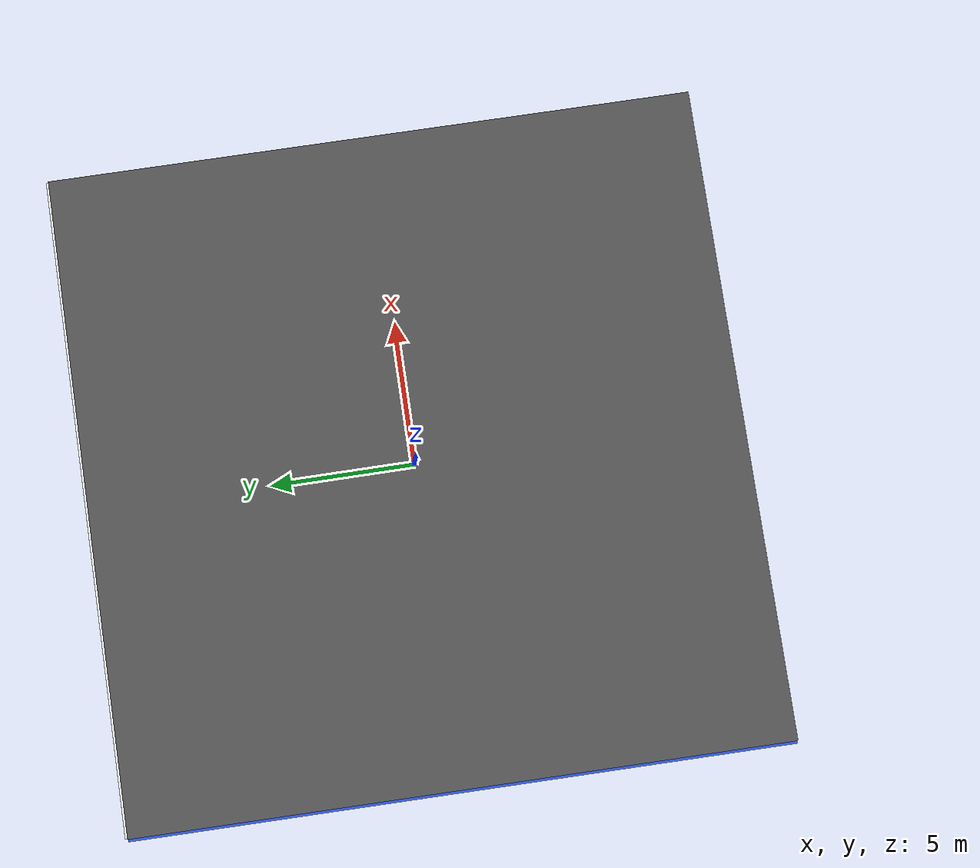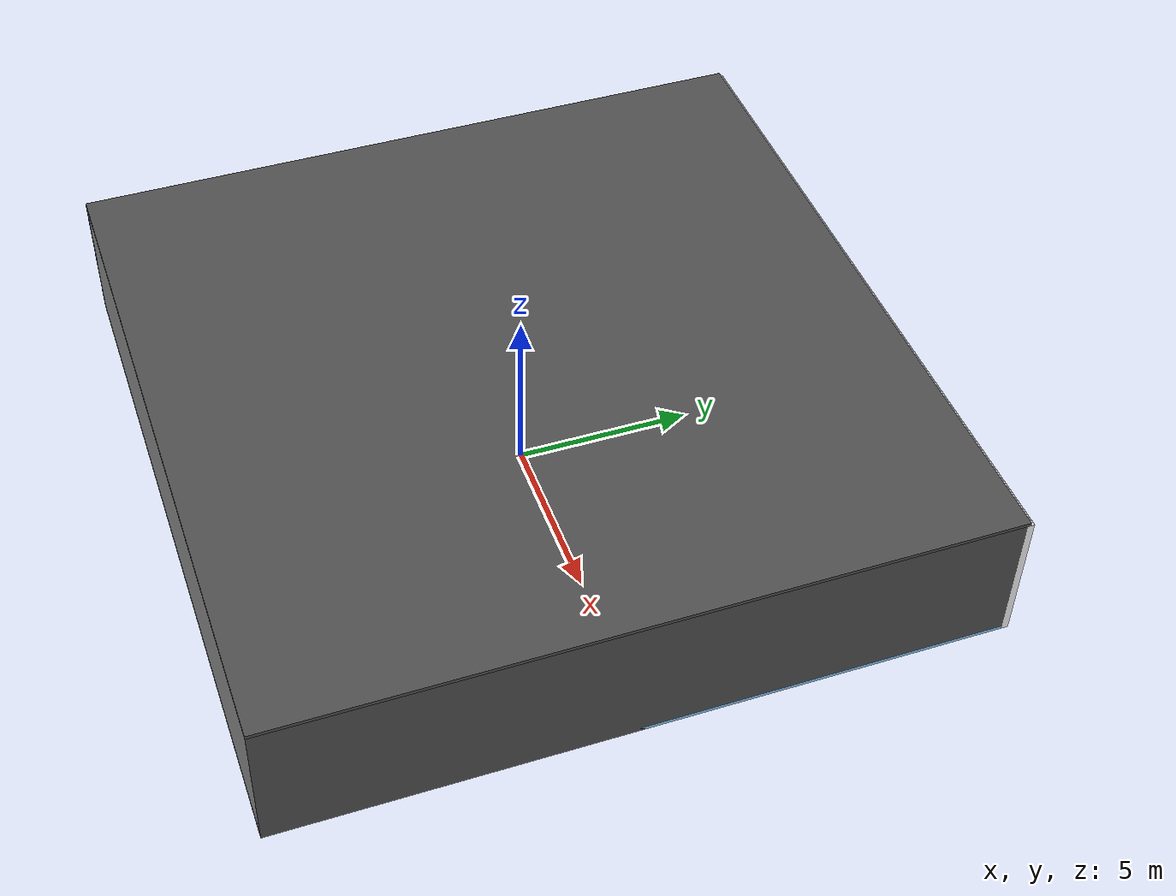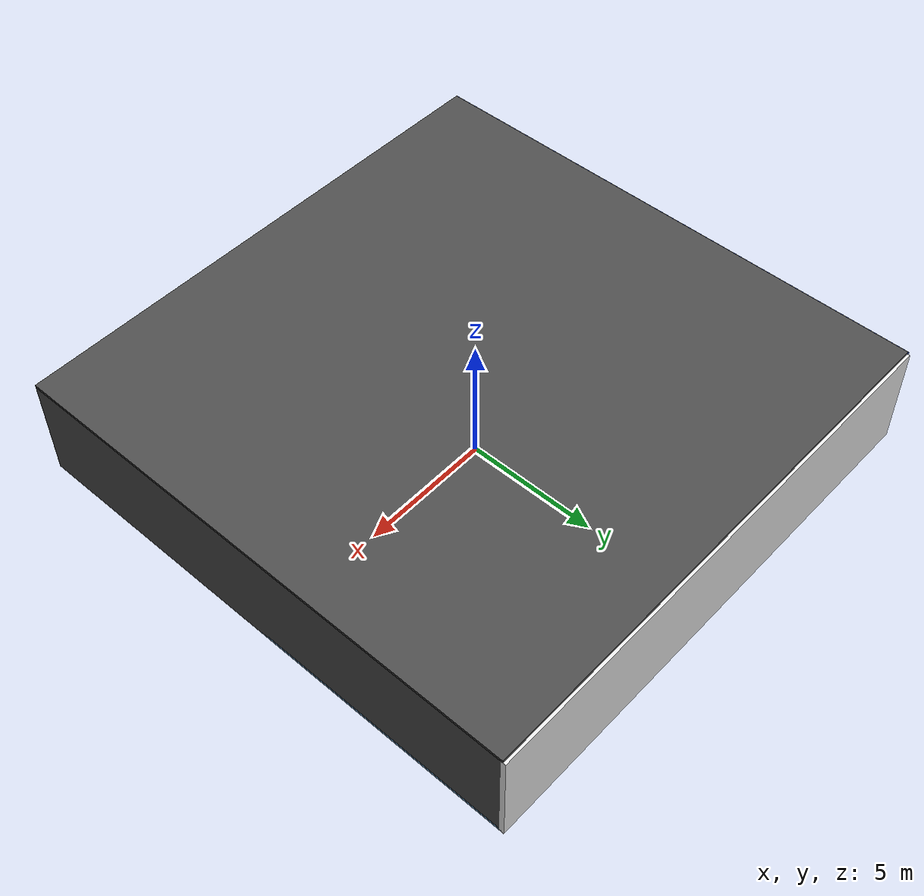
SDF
<sdf version="1.4">
 <world name="default">
  <physics type="ode">
   <max_step_size>0.001</max_step_size>
   <real_time_factor>1</real_time_factor>
   <real_time_update_rate>1000</real_time_update_rate>
   <gravity>0 0 -9.8</gravity>
  </physics>
  <scene><ambient>0.4 0.4 0.4 1</ambient><background>0.7 0.7 0.7 1</background><shadows>1</shadows></scene>
  <model name="Surrounding">
   <static>1</static>
   <link name="Ceiling">
    <collision name="Ceiling_Collision"><geometry><box><size>20 20 0.1</size></box></geometry></collision>
    <visual name="Ceiling_Visual">
     <geometry><box><size>20 20 0.1</size></box></geometry>
     <material>
      <script><uri>file://media/materials/scripts/gazebo.material</uri><name>Gazebo/DarkGrey</name></script>
     </material>
    </visual>
    <pose>0 0 4.05 0 0 0</pose>
   </link>
   <link name="Wall_South">
    <collision name="Wall_South_Collision">
     <geometry><box><size>20 0 4</size></box></geometry>
     <pose>0 0 2 0 -0 0</pose>
    </collision>
    <visual name="Wall_South_Visual">
     <pose>0 0 2 0 -0 0</pose>
     <geometry><box><size>20 0 4</size></box></geometry>
     <material>
      <script><uri>file://media/materials/scripts/gazebo.material</uri><name>Gazebo/PioneerBody</name></script>
     </material>
    </visual>
    <velocity_decay><linear>0</linear><angular>0</angular></velocity_decay>
    <pose>0 -10 0 0 -0 0</pose>
   </link>
   <link name="Wall_East">
    <collision name="Wall_21_Collision">
     <geometry><box><size>20 0 4</size></box></geometry>
     <pose>0 0 2 0 -0 0</pose>
    </collision>
    <visual name="Wall_21_Visual">
     <pose>0 0 2 0 -0 0</pose>
     <geometry><box><size>20 0 4</size></box></geometry>
     <material>
      <script><uri>file://media/materials/scripts/gazebo.material</uri><name>Gazebo/DarkGrey</name></script>
     </material>
    </visual>
    <velocity_decay><linear>0</linear><angular>0</angular></velocity_decay>
    <pose>10 0 0 0 -0 1.5708</pose>
   </link>
   <link name="Wall_North">
    <collision name="Wall_22_Collision">
     <geometry><box><size>20 0.2 4</size></box></geometry>
     <pose>0 0 2 0 -0 0</pose>
    </collision>
    <visual name="Wall_22_Visual">
     <pose>0 0 2 0 -0 0</pose>
     <geometry><box><size>20 0.2 4</size></box></geometry>
     <material>
      <script><uri>file://media/materials/scripts/gazebo.material</uri><name>Gazebo/WhiteGlow</name></script>
     </material>
    </visual>
    <velocity_decay><linear>0</linear><angular>0</angular></velocity_decay>
    <pose>0 10 0 0 -0 0</pose>
   </link>
   <link name="Wall_West">
    <collision name="Wall_23_Collision">
     <geometry><box><size>20 0.2 4</size></box></geometry>
     <pose>0 0 2 0 -0 0</pose>
    </collision>
    <visual name="Wall_23_Visual">
     <pose>0 0 2 0 -0 0</pose>
     <geometry><box><size>20 0.2 4</size></box></geometry>
     <material>
      <script><uri>file://media/materials/scripts/gazebo.material</uri><name>Gazebo/Blue</name></script>
     </material>
    </visual>
    <velocity_decay><linear>0</linear><angular>0</angular></velocity_decay>
    <pose>-10 0 0 0 0 -1.5708</pose>
   </link>
   <link name="Ground_link">
    <collision name="collision">
     <pose>0 0 .05 0 -0 0</pose>
     <geometry><box><size>20 20 0.1</size></box></geometry>
    </collision>
    <visual name="visual">
     <pose>0 0 .05 0 -0 0</pose>
     <geometry><box><size>20 20 0.1</size></box></geometry>
     <material>
      <script><uri>file://media/materials/scripts/gazebo.material</uri><name>Gazebo/SkyBlue</name></script>
     </material>
    </visual>
   </link>
   <static>1</static>
  </model>
  <spherical_coordinates>
   <surface_model>EARTH_WGS84</surface_model>
   <latitude_deg>0</latitude_deg>
   <longitude_deg>0</longitude_deg>
   <elevation>0</elevation>
   <heading_deg>0</heading_deg>
  </spherical_coordinates>
  <light name="lightball_0" type="diffuse">
   <diffuse>0.8 0.8 0.8 1</diffuse>
   <specular>0.2 0.2 0.2 1</specular>
   <attenuation>
    <range>100</range>
    <constant>0.7</constant>
    <linear>0.01</linear>
    <quadratic>0.001</quadratic>
   </attenuation>
   <direction>-0.5 0.1 -0.9</direction>
   <pose>6.28063218048 -3.68997960361 0.923994375485 0 0 0</pose>
  </light>
  <light name="lightball_1" type="diffuse">
   <diffuse>0.8 0.8 0.8 1</diffuse>
   <specular>0.2 0.2 0.2 1</specular>
   <attenuation>
    <range>100</range>
    <constant>0.7</constant>
    <linear>0.01</linear>
    <quadratic>0.001</quadratic>
   </attenuation>
   <direction>-0.5 0.1 -0.9</direction>
   <pose>6.86976914289 3.60192543262 0.760691728205 0 0 0</pose>
  </light>
  <light name="lightball_2" type="diffuse">
   <diffuse>0.8 0.8 0.8 1</diffuse>
   <specular>0.2 0.2 0.2 1</specular>
   <attenuation>
    <range>100</range>
    <constant>0.7</constant>
    <linear>0.01</linear>
    <quadratic>0.001</quadratic>
   </attenuation>
   <direction>-0.5 0.1 -0.9</direction>
   <pose>0.838332430161 -5.43280040818 3.00062198686 0 0 0</pose>
  </light>
  <light name="lightball_3" type="diffuse">
   <diffuse>0.8 0.8 0.8 1</diffuse>
   <specular>0.2 0.2 0.2 1</specular>
   <attenuation>
    <range>100</range>
    <constant>0.7</constant>
    <linear>0.01</linear>
    <quadratic>0.001</quadratic>
   </attenuation>
   <direction>-0.5 0.1 -0.9</direction>
   <pose>-9.47787377735 6.47450515252 0.512945398169 0 0 0</pose>
  </light>
  <light name="lightball_4" type="diffuse">
   <diffuse>0.8 0.8 0.8 1</diffuse>
   <specular>0.2 0.2 0.2 1</specular>
   <attenuation>
    <range>100</range>
    <constant>0.7</constant>
    <linear>0.01</linear>
    <quadratic>0.001</quadratic>
   </attenuation>
   <direction>-0.5 0.1 -0.9</direction>
   <pose>-2.73941620032 9.30417406548 3.25998557861 0 0 0</pose>
  </light>
  <light name="lightball_5" type="diffuse">
   <diffuse>0.8 0.8 0.8 1</diffuse>
   <specular>0.2 0.2 0.2 1</specular>
   <attenuation>
    <range>100</range>
    <constant>0.7</constant>
    <linear>0.01</linear>
    <quadratic>0.001</quadratic>
   </attenuation>
   <direction>-0.5 0.1 -0.9</direction>
   <pose>-4.98706739976 -2.04541777123 2.48762280923 0 0 0</pose>
  </light>
  <include><uri>model://table</uri><pose>-8.23963642591 -4.38140231649 0 0 0 1.93981870445</pose></include>
  <include>
   <uri>model://textured_shapes</uri>
   <pose>2.15796674683 -1.14759405363 0 0 0 2.11489389782</pose>
  </include>
  <include>
   <uri>model://robocup_3Dsim_goal</uri>
   <pose>2.47073524814 6.75748913498 0 0 0 0.738299434507</pose>
  </include>
  <include>
   <uri>model://construction_cone</uri>
   <pose>4.26968367372 8.2869866671 0 0 0 2.18262625755</pose>
  </include>
 </world>
</sdf>

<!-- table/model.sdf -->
<sdf version="1.5">
  <model name="table">
    <static>true</static>
    <link name="link">
      <collision name="surface">
        <pose>0 0 1.0 0 0 0</pose>
        <geometry>
          <box>
            <size>1.5 0.8 0.03</size>
          </box>
        </geometry>
        <surface>
          <friction>
            <ode>
              <mu>0.6</mu>
              <mu2>0.6</mu2>
            </ode>
          </friction>
        </surface>
      </collision>
      <visual name="visual1">
        <pose>0 0 1.0 0 0 0</pose>
        <geometry>
          <box>
            <size>1.5 0.8 0.03</size>
          </box>
        </geometry>
        <material>
          <script>
            <uri>model://media/materials/scripts/gazebo.material</uri>
            <name>Gazebo/Wood</name>
          </script>
        </material>
      </visual>
      <collision name="front_left_leg">
        <pose>0.68 0.38 0.5 0 0 0</pose>
        <geometry>
          <cylinder>
            <radius>0.02</radius>
            <length>1.0</length>
          </cylinder>
        </geometry>
      </collision>
      <visual name="front_left_leg">
        <pose>0.68 0.38 0.5 0 0 0</pose>
        <geometry>
          <cylinder>
            <radius>0.02</radius>
            <length>1.0</length>
          </cylinder>
        </geometry>
        <material>
          <script>
            <uri>model://media/materials/scripts/gazebo.material</uri>
            <name>Gazebo/Grey</name>
          </script>
        </material>
      </visual>
      <collision name="front_right_leg">
        <pose>0.68 -0.38 0.5 0 0 0</pose>
        <geometry>
          <cylinder>
            <radius>0.02</radius>
            <length>1.0</length>
          </cylinder>
        </geometry>
      </collision>
      <visual name="front_right_leg">
        <pose>0.68 -0.38 0.5 0 0 0</pose>
        <geometry>
          <cylinder>
            <radius>0.02</radius>
            <length>1.0</length>
          </cylinder>
        </geometry>
        <material>
          <script>
            <uri>model://media/materials/scripts/gazebo.material</uri>
            <name>Gazebo/Grey</name>
          </script>
        </material>
      </visual>
      <collision name="back_right_leg">
        <pose>-0.68 -0.38 0.5 0 0 0</pose>
        <geometry>
          <cylinder>
            <radius>0.02</radius>
            <length>1.0</length>
          </cylinder>
        </geometry>
      </collision>
      <visual name="back_right_leg">
        <pose>-0.68 -0.38 0.5 0 0 0</pose>
        <geometry>
          <cylinder>
            <radius>0.02</radius>
            <length>1.0</length>
          </cylinder>
        </geometry>
        <material>
          <script>
            <uri>model://media/materials/scripts/gazebo.material</uri>
            <name>Gazebo/Grey</name>
          </script>
        </material>
      </visual>
      <collision name="back_left_leg">
        <pose>-0.68 0.38 0.5 0 0 0</pose>
        <geometry>
          <cylinder>
            <radius>0.02</radius>
            <length>1.0</length>
          </cylinder>
        </geometry>
      </collision>
      <visual name="back_left_leg">
        <pose>-0.68 0.38 0.5 0 0 0</pose>
        <geometry>
          <cylinder>
            <radius>0.02</radius>
            <length>1.0</length>
          </cylinder>
        </geometry>
        <material>
          <script>
            <uri>model://media/materials/scripts/gazebo.material</uri>
            <name>Gazebo/Grey</name>
          </script>
        </material>
      </visual>
    </link>
  </model>
</sdf>

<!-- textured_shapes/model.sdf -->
<sdf version="1.6">
  <model name="textured_shapes">
    <pose>0 0 0.5 0 0 0</pose>
    <link name="box">
      <pose>0 -1.5 0 0 0 0</pose>
      <collision name="collision">
        <geometry>
          <box>
            <size>1 1 1</size>
          </box>
        </geometry>
      </collision>
      <visual name="visual">
        <geometry>
          <box>
            <size>1 1 1</size>
          </box>
        </geometry>
        <material>
          <script>
            <uri>model://../model_source/models/textured_shapes/materials/scripts</uri>
            <uri>model://../model_source/models/textured_shapes/materials/textures</uri>
            <name>TexturedShape/Squares</name>
          </script>
        </material>
      </visual>
    </link>
    <link name="sphere">
      <collision name="collision">
        <geometry>
          <sphere>
            <radius>0.5</radius>
          </sphere>
        </geometry>
      </collision>
      <visual name="visual">
        <geometry>
          <sphere>
            <radius>0.5</radius>
          </sphere>
        </geometry>
        <material>
          <script>
            <uri>model://../model_source/models/textured_shapes/materials/scripts</uri>
            <uri>model://../model_source/models/textured_shapes/materials/textures</uri>
            <name>TexturedShape/Squares</name>
          </script>
        </material>
      </visual>
    </link>
    <link name="cylinder">
      <pose>0 1.5 0 0 0 0</pose>
      <collision name="collision">
        <geometry>
          <cylinder>
            <radius>0.5</radius>
            <length>1</length>
          </cylinder>
        </geometry>
      </collision>
      <visual name="visual">
        <geometry>
          <cylinder>
            <radius>0.5</radius>
            <length>1</length>
          </cylinder>
        </geometry>
        <material>
          <script>
            <uri>model://../model_source/models/textured_shapes/materials/scripts</uri>
            <uri>model://../model_source/models/textured_shapes/materials/textures</uri>
            <name>TexturedShape/Squares</name>
          </script>
        </material>
      </visual>
    </link>
  </model>
</sdf>

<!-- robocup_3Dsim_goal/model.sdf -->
<sdf version="1.5">
  <model name="robocup_3d_goal">
    <static>true</static>
    <link name="left_post">
      <pose>0 1.05 0.45 0 0 0</pose>
      <collision name="collision">
        <geometry>
          <cylinder>
            <radius>0.05</radius>
            <length>0.9</length>
          </cylinder>
        </geometry>
      </collision>
      <visual name="visual">
        <geometry>
          <cylinder>
            <radius>0.05</radius>
            <length>0.9</length>
          </cylinder>
        </geometry>
        <material>
          <script>
            <uri>file://media/materials/scripts/gazebo.material</uri>
            <name>Gazebo/ZincYellow</name>
          </script>
        </material>
      </visual>
    </link>
    <link name="left_support_horiz_lower">
      <pose>0.30 1.05 0.01 0 0 0</pose>
      <collision name="collision">
        <geometry>
          <box>
            <size>0.50 0.02 0.02</size>
          </box>
        </geometry>
      </collision>
      <visual name="visual">
        <geometry>
          <box>
            <size>0.50 0.02 0.02</size>
          </box>
        </geometry>
        <material>
          <script>
            <uri>file://media/materials/scripts/gazebo.material</uri>
            <name>Gazebo/White</name>
          </script>
        </material>
      </visual>
    </link>
    <link name="left_support_horiz_upper">
      <pose>0.30 1.05 0.79 0 0 0</pose>
      <collision name="collision">
        <geometry>
          <box>
            <size>0.50 0.02 0.02</size>
          </box>
        </geometry>
      </collision>
      <visual name="visual">
        <geometry>
          <box>
            <size>0.50 0.02 0.02</size>
          </box>
        </geometry>
        <material>
          <script>
            <uri>file://media/materials/scripts/gazebo.material</uri>
            <name>Gazebo/White</name>
          </script>
        </material>
      </visual>
    </link>
    <link name="left_support_vertical">
      <pose>0.56 1.05 0.4 0 1.5708 0</pose>
      <collision name="collision">
        <geometry>
          <box>
            <size>0.80 0.02 0.02</size>
          </box>
        </geometry>
      </collision>
      <visual name="visual">
        <geometry>
          <box>
            <size>0.80 0.02 0.02</size>
          </box>
        </geometry>
        <material>
          <script>
            <uri>file://media/materials/scripts/gazebo.material</uri>
            <name>Gazebo/White</name>
          </script>
        </material>
      </visual>
    </link>
    <link name="right_support_horiz_lower">
      <pose>0.30 -1.05 0.01 0 0 0</pose>
      <collision name="collision">
        <geometry>
          <box>
            <size>0.50 0.02 0.02</size>
          </box>
        </geometry>
      </collision>
      <visual name="visual">
        <geometry>
          <box>
            <size>0.50 0.02 0.02</size>
          </box>
        </geometry>
        <material>
          <script>
            <uri>file://media/materials/scripts/gazebo.material</uri>
            <name>Gazebo/White</name>
          </script>
        </material>
      </visual>
    </link>
    <link name="right_support_horiz_upper">
      <pose>0.30 -1.05 0.79 0 0 0</pose>
      <collision name="collision">
        <geometry>
          <box>
            <size>0.50 0.02 0.02</size>
          </box>
        </geometry>
      </collision>
      <visual name="visual">
        <geometry>
          <box>
            <size>0.50 0.02 0.02</size>
          </box>
        </geometry>
        <material>
          <script>
            <uri>file://media/materials/scripts/gazebo.material</uri>
            <name>Gazebo/White</name>
          </script>
        </material>
      </visual>
    </link>
    <link name="right_support_vertical">
      <pose>0.56 -1.05 0.4 0 1.5708 0</pose>
      <collision name="collision">
        <geometry>
          <box>
            <size>0.80 0.02 0.02</size>
          </box>
        </geometry>
      </collision>
      <visual name="visual">
        <geometry>
          <box>
            <size>0.80 0.02 0.02</size>
          </box>
        </geometry>
        <material>
          <script>
            <uri>file://media/materials/scripts/gazebo.material</uri>
            <name>Gazebo/White</name>
          </script>
        </material>
      </visual>
    </link>
    <link name="center_support_horiz_lower">
      <pose>0.56 0 0.01 0 1.5708 0</pose>
      <collision name="collision">
        <geometry>
          <box>
            <size>0.02 2.08 0.02</size>
          </box>
        </geometry>
      </collision>
      <visual name="visual">
        <geometry>
          <box>
            <size>0.02 2.08 0.02</size>
          </box>
        </geometry>
        <material>
          <script>
            <uri>file://media/materials/scripts/gazebo.material</uri>
            <name>Gazebo/White</name>
          </script>
        </material>
      </visual>
    </link>
    <link name="center_support_horiz_upper">
      <pose>0.56 0 0.79 0 1.5708 0</pose>
      <collision name="collision">
        <geometry>
          <box>
            <size>0.02 2.08 0.02</size>
          </box>
        </geometry>
      </collision>
      <visual name="visual">
        <geometry>
          <box>
            <size>0.02 2.08 0.02</size>
          </box>
        </geometry>
        <material>
          <script>
            <uri>file://media/materials/scripts/gazebo.material</uri>
            <name>Gazebo/White</name>
          </script>
        </material>
      </visual>
    </link>
    <link name="right_post">
      <pose>0 -1.05 0.45 0 0 0</pose>
      <collision name="collision">
        <geometry>
          <cylinder>
            <radius>0.05</radius>
            <length>0.9</length>
          </cylinder>
        </geometry>
      </collision>
      <visual name="visual">
        <geometry>
          <cylinder>
            <radius>0.05</radius>
            <length>0.9</length>
          </cylinder>
        </geometry>
        <material>
          <script>
            <uri>file://media/materials/scripts/gazebo.material</uri>
            <name>Gazebo/ZincYellow</name>
          </script>
        </material>
      </visual>
    </link>
    <link name="crossbar">
      <pose>0 0 0.85 1.57 1.57 0</pose>
      <collision name="collision">
        <geometry>
          <cylinder>
            <radius>0.05</radius>
            <length>2.0</length>
          </cylinder>
        </geometry>
      </collision>
      <visual name="visual">
        <geometry>
          <cylinder>
            <radius>0.05</radius>
            <length>2.0</length>
          </cylinder>
        </geometry>
        <material>
          <script>
            <uri>file://media/materials/scripts/gazebo.material</uri>
            <name>Gazebo/ZincYellow</name>
          </script>
        </material>
      </visual>
    </link>
    <link name="center_net">
      <pose>0.56 0 0.40 0 0 0</pose>
      <collision name="collision">
        <geometry>
          <box>
            <size>0.01 2.1 0.80</size>
          </box>
        </geometry>
      </collision>
      <visual name="visual">
        <geometry>
          <box>
            <size>0.01 2.1 0.80</size>
          </box>
        </geometry>
        <material>
          <script>
            <uri>model://../model_source/models/robocup09_spl_field/materials/scripts/</uri>
            <uri>model://../model_source/models/robocup09_spl_field/materials/textures/</uri>
            <name>RoboCup/Net</name>
          </script>
        </material>
      </visual>
    </link>
    <link name="left_net">
      <pose>0.30 1.05 0.40 0 0 0</pose>
      <collision name="collision">
        <geometry>
          <box>
            <size>0.50 0.01 0.76</size>
          </box>
        </geometry>
      </collision>
      <visual name="visual">
        <geometry>
          <box>
            <size>0.50 0.01 0.76</size>
          </box>
        </geometry>
        <material>
          <script>
            <uri>model://../model_source/models/robocup09_spl_field/materials/scripts/</uri>
            <uri>model://../model_source/models/robocup09_spl_field/materials/textures/</uri>
            <name>RoboCup/Net</name>
          </script>
        </material>
      </visual>
    </link>
    <link name="right_net">
      <pose>0.30 -1.05 0.40 0 0 0</pose>
      <collision name="collision">
        <geometry>
          <box>
            <size>0.50 0.01 0.76</size>
          </box>
        </geometry>
      </collision>
      <visual name="visual">
        <geometry>
          <box>
            <size>0.50 0.01 0.76</size>
          </box>
        </geometry>
        <material>
          <script>
            <uri>model://../model_source/models/robocup09_spl_field/materials/scripts/</uri>
            <uri>model://../model_source/models/robocup09_spl_field/materials/textures/</uri>
            <name>RoboCup/Net</name>
          </script>
        </material>
      </visual>
    </link>
  </model>
</sdf>

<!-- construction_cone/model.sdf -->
<sdf version="1.5">
  <model name="Construction Cone">
    <link name="link">
      <collision name="collision">
        <geometry>
          <mesh>
            <scale>10 10 10</scale>
            <uri>file://isr-testbed/construction_cone/meshes/construction_cone.dae</uri>
          </mesh>
        </geometry>
      </collision>
      <visual name="visual">
        <geometry>
          <mesh>
            <scale>10 10 10</scale>
            <uri>file://isr-testbed/construction_cone/meshes/construction_cone.dae</uri>
          </mesh>
        </geometry>
      </visual>
    </link>
  </model>
</sdf>
